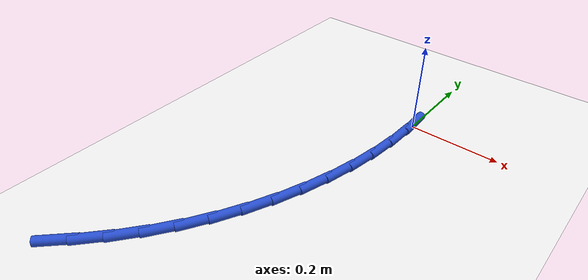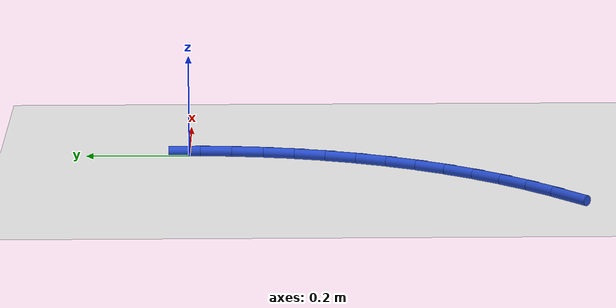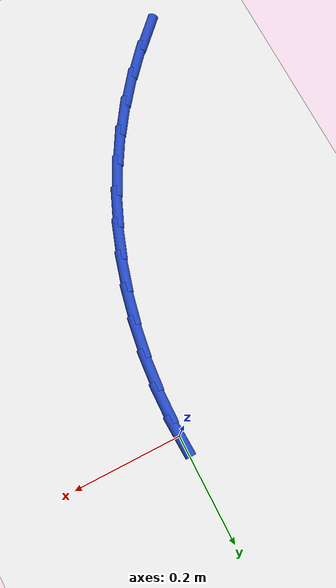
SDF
<sdf version="1.6">
 <world name="default">
  <model name="ground_plane">
   <static>1</static>
   <link name="link">
    <collision name="collision">
     <geometry><plane><normal>0 0 1</normal><size>100 100</size></plane></geometry>
     <surface><friction><ode><mu>100</mu><mu2>50</mu2></ode></friction></surface>
    </collision>
    <visual name="visual">
     <cast_shadows>0</cast_shadows>
     <geometry><plane><normal>0 0 1</normal><size>100 100</size></plane></geometry>
     <material>
      <script><uri>file://media/materials/scripts/gazebo.material</uri><name>Gazebo/WhiteGlow</name></script>
     </material>
    </visual>
   </link>
  </model>
  <model name="line">
   <link name="link_0">
    <pose>6.938893903907228e-18 -2.7755575615628914e-17 0.01 0 1.57 -1.5361124215651976</pose>
    <collision name="collision">
     <geometry><cylinder><radius>0.01</radius><length>0.08</length></cylinder></geometry>
    </collision>
    <visual name="visual">
     <material>
      <script><name>Gazebo/Blue</name><uri>file://media/materials/scripts/gazebo.material</uri></script>
     </material>
     <geometry><cylinder><radius>0.01</radius><length>0.08</length></cylinder></geometry>
    </visual>
   </link>
   <link name="link_97">
    <pose>-0.3031291696748633 -0.7123209039376566 0.01 0 1.57 0.7885313416509044</pose>
    <collision name="collision">
     <geometry><cylinder><radius>0.01</radius><length>0.08</length></cylinder></geometry>
    </collision>
    <visual name="visual">
     <material>
      <script><name>Gazebo/Blue</name><uri>file://media/materials/scripts/gazebo.material</uri></script>
     </material>
     <geometry><cylinder><radius>0.01</radius><length>0.08</length></cylinder></geometry>
    </visual>
   </link>
   <link name="link_98">
    <pose>-0.26022594639892777 -0.6691479878913473 0.01 0 1.57 0.8485655564611883</pose>
    <collision name="collision">
     <geometry><cylinder><radius>0.01</radius><length>0.08</length></cylinder></geometry>
    </collision>
    <visual name="visual">
     <material>
      <script><name>Gazebo/Blue</name><uri>file://media/materials/scripts/gazebo.material</uri></script>
     </material>
     <geometry><cylinder><radius>0.01</radius><length>0.08</length></cylinder></geometry>
    </visual>
   </link>
   <link name="link_99">
    <pose>-0.22007082520610818 -0.623570123089267 0.01 0 1.57 0.9113050630274941</pose>
    <collision name="collision">
     <geometry><cylinder><radius>0.01</radius><length>0.08</length></cylinder></geometry>
    </collision>
    <visual name="visual">
     <material>
      <script><name>Gazebo/Blue</name><uri>file://media/materials/scripts/gazebo.material</uri></script>
     </material>
     <geometry><cylinder><radius>0.01</radius><length>0.08</length></cylinder></geometry>
    </visual>
   </link>
   <link name="link_100">
    <pose>-0.18287169740392684 -0.5755892067832659 0.01 0 1.57 0.976653728269033</pose>
    <collision name="collision">
     <geometry><cylinder><radius>0.01</radius><length>0.08</length></cylinder></geometry>
    </collision>
    <visual name="visual">
     <material>
      <script><name>Gazebo/Blue</name><uri>file://media/materials/scripts/gazebo.material</uri></script>
     </material>
     <geometry><cylinder><radius>0.01</radius><length>0.08</length></cylinder></geometry>
    </visual>
   </link>
   <link name="link_101">
    <pose>-0.14883580168471452 -0.5252083591179789 0.01 0 1.57 1.0429623221798245</pose>
    <collision name="collision">
     <geometry><cylinder><radius>0.01</radius><length>0.08</length></cylinder></geometry>
    </collision>
    <visual name="visual">
     <material>
      <script><name>Gazebo/Blue</name><uri>file://media/materials/scripts/gazebo.material</uri></script>
     </material>
     <geometry><cylinder><radius>0.01</radius><length>0.08</length></cylinder></geometry>
    </visual>
   </link>
   <link name="link_102">
    <pose>-0.11812041803179013 -0.4725243145842741 0.01 0 1.57 1.1077952599530192</pose>
    <collision name="collision">
     <geometry><cylinder><radius>0.01</radius><length>0.08</length></cylinder></geometry>
    </collision>
    <visual name="visual">
     <material>
      <script><name>Gazebo/Blue</name><uri>file://media/materials/scripts/gazebo.material</uri></script>
     </material>
     <geometry><cylinder><radius>0.01</radius><length>0.08</length></cylinder></geometry>
    </visual>
   </link>
   <link name="link_103">
    <pose>-0.09079844355079873 -0.4177919272098084 0.01 0 1.57 1.171224358919384</pose>
    <collision name="collision">
     <geometry><cylinder><radius>0.01</radius><length>0.08</length></cylinder></geometry>
    </collision>
    <visual name="visual">
     <material>
      <script><name>Gazebo/Blue</name><uri>file://media/materials/scripts/gazebo.material</uri></script>
     </material>
     <geometry><cylinder><radius>0.01</radius><length>0.08</length></cylinder></geometry>
    </visual>
   </link>
   <link name="link_104">
    <pose>-0.06693463920604956 -0.36128129680354226 0.01 0 1.57 1.2335948957667668</pose>
    <collision name="collision">
     <geometry><cylinder><radius>0.01</radius><length>0.08</length></cylinder></geometry>
    </collision>
    <visual name="visual">
     <material>
      <script><name>Gazebo/Blue</name><uri>file://media/materials/scripts/gazebo.material</uri></script>
     </material>
     <geometry><cylinder><radius>0.01</radius><length>0.08</length></cylinder></geometry>
    </visual>
   </link>
   <link name="link_105">
    <pose>-0.046593765961852995 -0.3032625231744385 0.01 0 1.57 1.2952656870976456</pose>
    <collision name="collision">
     <geometry><cylinder><radius>0.01</radius><length>0.08</length></cylinder></geometry>
    </collision>
    <visual name="visual">
     <material>
      <script><name>Gazebo/Blue</name><uri>file://media/materials/scripts/gazebo.material</uri></script>
     </material>
     <geometry><cylinder><radius>0.01</radius><length>0.08</length></cylinder></geometry>
    </visual>
   </link>
   <link name="link_106">
    <pose>-0.029840584782518425 -0.24400570613145736 0.01 0 1.57 1.3566026400007982</pose>
    <collision name="collision">
     <geometry><cylinder><radius>0.01</radius><length>0.08</length></cylinder></geometry>
    </collision>
    <visual name="visual">
     <material>
      <script><name>Gazebo/Blue</name><uri>file://media/materials/scripts/gazebo.material</uri></script>
     </material>
     <geometry><cylinder><radius>0.01</radius><length>0.08</length></cylinder></geometry>
    </visual>
   </link>
   <link name="link_107">
    <pose>-0.016739856632356113 -0.18378094548356183 0.01 0 1.57 1.4179737350489288</pose>
    <collision name="collision">
     <geometry><cylinder><radius>0.01</radius><length>0.08</length></cylinder></geometry>
    </collision>
    <visual name="visual">
     <material>
      <script><name>Gazebo/Blue</name><uri>file://media/materials/scripts/gazebo.material</uri></script>
     </material>
     <geometry><cylinder><radius>0.01</radius><length>0.08</length></cylinder></geometry>
    </visual>
   </link>
   <link name="link_108">
    <pose>-0.007356342475675612 -0.12285834103971216 0.01 0 1.57 1.4797446685033657</pose>
    <collision name="collision">
     <geometry><cylinder><radius>0.01</radius><length>0.08</length></cylinder></geometry>
    </collision>
    <visual name="visual">
     <material>
      <script><name>Gazebo/Blue</name><uri>file://media/materials/scripts/gazebo.material</uri></script>
     </material>
     <geometry><cylinder><radius>0.01</radius><length>0.08</length></cylinder></geometry>
    </visual>
   </link>
   <link name="link_109">
    <pose>-0.0017548032767870057 -0.06150799260887155 0.01 0 1.57 1.542274384658259</pose>
    <collision name="collision">
     <geometry><cylinder><radius>0.01</radius><length>0.08</length></cylinder></geometry>
    </collision>
    <visual name="visual">
     <material>
      <script><name>Gazebo/Blue</name><uri>file://media/materials/scripts/gazebo.material</uri></script>
     </material>
     <geometry><cylinder><radius>0.01</radius><length>0.08</length></cylinder></geometry>
    </visual>
   </link>
  </model>
 </world>
</sdf>
